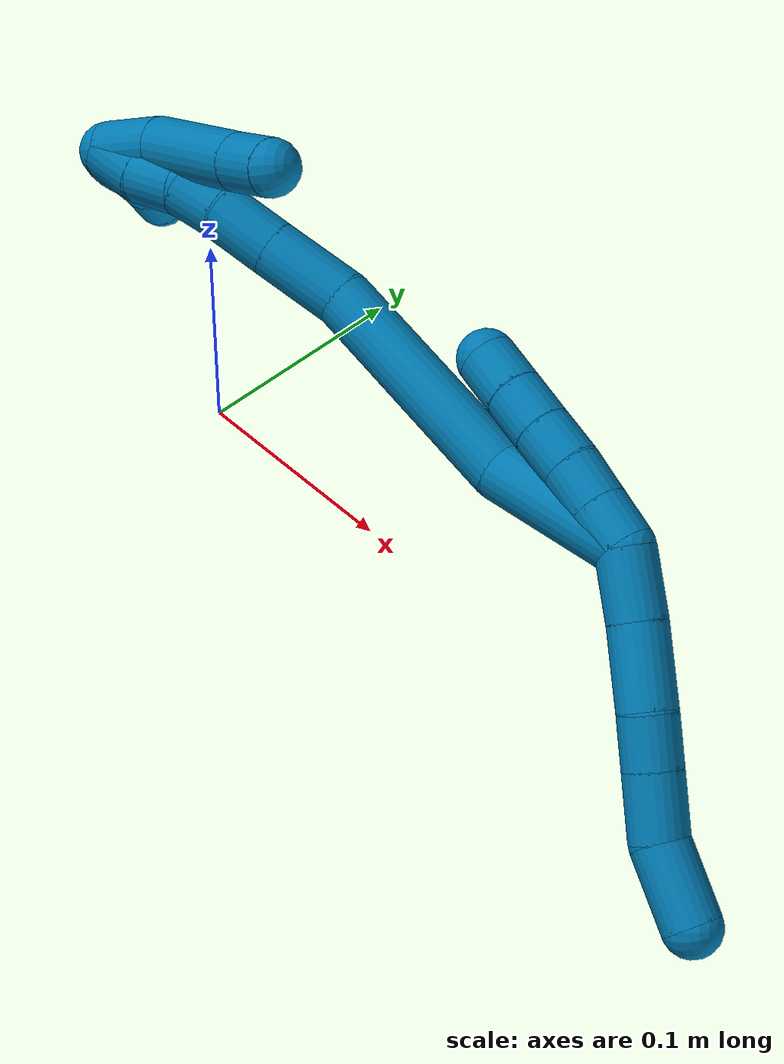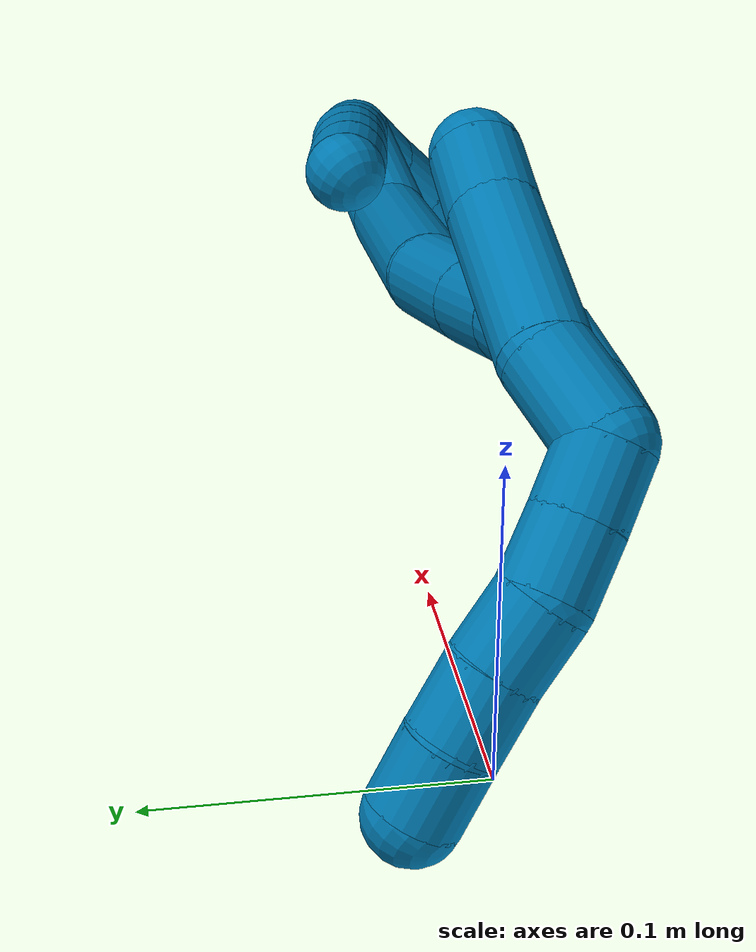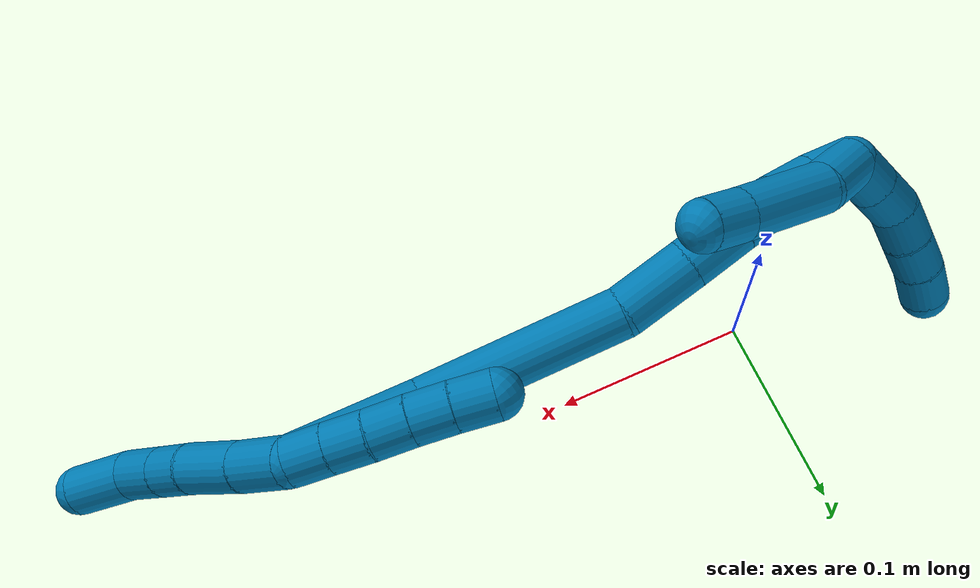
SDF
<sdf version="1.7">
 <world name="default">
  <model name="9">
   <static>0</static>
   <link name="9">
    <collision name="collision-cylinder-e_1_2_8">
     <pose>0.012332 -0.007903 -0.002269 1.85042 0.982718 1.23538</pose>
     <geometry><cylinder><radius>0.0125</radius><length>0.029643</length></cylinder></geometry>
     <surface>
      <friction><ode><mu>1.16</mu><mu2>1.16</mu2><slip1>0</slip1><slip2>0</slip2></ode></friction>
      <contact><ode><kp>1e+06</kp><kd>1</kd><max_vel>0</max_vel><min_depth>0.001</min_depth></ode></contact>
     </surface>
    </collision>
    <visual name="visual-cylinder-e_1_2_8">
     <pose>0.012332 -0.007903 -0.002269 1.85042 0.982718 1.23538</pose>
     <geometry><cylinder><radius>0.0125</radius><length>0.029643</length></cylinder></geometry>
     <material><ambient>0 0.490196 0.709804 1</ambient></material>
    </visual>
    <collision name="collision-cylinder-e_2_8_9">
     <pose>0.039616 -0.024712 -0.00653 1.79076 1.02285 1.22221</pose>
     <geometry><cylinder><radius>0.0125</radius><length>0.035035</length></cylinder></geometry>
     <surface>
      <friction><ode><mu>1.16</mu><mu2>1.16</mu2><slip1>0</slip1><slip2>0</slip2></ode></friction>
      <contact><ode><kp>1e+06</kp><kd>1</kd><max_vel>0</max_vel><min_depth>0.001</min_depth></ode></contact>
     </surface>
    </collision>
    <visual name="visual-cylinder-e_2_8_9">
     <pose>0.039616 -0.024712 -0.00653 1.79076 1.02285 1.22221</pose>
     <geometry><cylinder><radius>0.0125</radius><length>0.035035</length></cylinder></geometry>
     <material><ambient>0 0.490196 0.709804 1</ambient></material>
    </visual>
    <collision name="collision-cylinder-e_3_9_10">
     <pose>0.063507 -0.040174 -0.009065 1.65354 0.936272 1.00459</pose>
     <geometry><cylinder><radius>0.0125</radius><length>0.022197</length></cylinder></geometry>
     <surface>
      <friction><ode><mu>1.16</mu><mu2>1.16</mu2><slip1>0</slip1><slip2>0</slip2></ode></friction>
      <contact><ode><kp>1e+06</kp><kd>1</kd><max_vel>0</max_vel><min_depth>0.001</min_depth></ode></contact>
     </surface>
    </collision>
    <visual name="visual-cylinder-e_3_9_10">
     <pose>0.063507 -0.040174 -0.009065 1.65354 0.936272 1.00459</pose>
     <geometry><cylinder><radius>0.0125</radius><length>0.022197</length></cylinder></geometry>
     <material><ambient>0 0.490196 0.709804 1</ambient></material>
    </visual>
    <collision name="collision-cylinder-e_4_10_11">
     <pose>0.083855 -0.054958 -0.010325 1.65772 0.944269 1.01654</pose>
     <geometry><cylinder><radius>0.0125</radius><length>0.02817</length></cylinder></geometry>
     <surface>
      <friction><ode><mu>1.16</mu><mu2>1.16</mu2><slip1>0</slip1><slip2>0</slip2></ode></friction>
      <contact><ode><kp>1e+06</kp><kd>1</kd><max_vel>0</max_vel><min_depth>0.001</min_depth></ode></contact>
     </surface>
    </collision>
    <visual name="visual-cylinder-e_4_10_11">
     <pose>0.083855 -0.054958 -0.010325 1.65772 0.944269 1.01654</pose>
     <geometry><cylinder><radius>0.0125</radius><length>0.02817</length></cylinder></geometry>
     <material><ambient>0 0.490196 0.709804 1</ambient></material>
    </visual>
    <collision name="collision-cylinder-e_5_11_6">
     <pose>0.108621 -0.072604 -0.017235 2.15241 0.869805 1.42219</pose>
     <geometry><cylinder><radius>0.0125</radius><length>0.034955</length></cylinder></geometry>
     <surface>
      <friction><ode><mu>1.16</mu><mu2>1.16</mu2><slip1>0</slip1><slip2>0</slip2></ode></friction>
      <contact><ode><kp>1e+06</kp><kd>1</kd><max_vel>0</max_vel><min_depth>0.001</min_depth></ode></contact>
     </surface>
    </collision>
    <visual name="visual-cylinder-e_5_11_6">
     <pose>0.108621 -0.072604 -0.017235 2.15241 0.869805 1.42219</pose>
     <geometry><cylinder><radius>0.0125</radius><length>0.034955</length></cylinder></geometry>
     <material><ambient>0 0.490196 0.709804 1</ambient></material>
    </visual>
    <collision name="collision-cylinder-e_1_2_12">
     <pose>-0.007031 0.004008 0.005874 -0.598778 -0.779735 0.252315</pose>
     <geometry><cylinder><radius>0.0125</radius><length>0.02</length></cylinder></geometry>
     <surface>
      <friction><ode><mu>1.16</mu><mu2>1.16</mu2><slip1>0</slip1><slip2>0</slip2></ode></friction>
      <contact><ode><kp>1e+06</kp><kd>1</kd><max_vel>0</max_vel><min_depth>0.001</min_depth></ode></contact>
     </surface>
    </collision>
    <visual name="visual-cylinder-e_1_2_12">
     <pose>-0.007031 0.004008 0.005874 -0.598778 -0.779735 0.252315</pose>
     <geometry><cylinder><radius>0.0125</radius><length>0.02</length></cylinder></geometry>
     <material><ambient>0 0.490196 0.709804 1</ambient></material>
    </visual>
    <collision name="collision-cylinder-e_2_12_13">
     <pose>-0.021136 0.01197 0.017606 -0.593668 -0.785848 0.252207</pose>
     <geometry><cylinder><radius>0.0125</radius><length>0.02</length></cylinder></geometry>
     <surface>
      <friction><ode><mu>1.16</mu><mu2>1.16</mu2><slip1>0</slip1><slip2>0</slip2></ode></friction>
      <contact><ode><kp>1e+06</kp><kd>1</kd><max_vel>0</max_vel><min_depth>0.001</min_depth></ode></contact>
     </surface>
    </collision>
    <visual name="visual-cylinder-e_2_12_13">
     <pose>-0.021136 0.01197 0.017606 -0.593668 -0.785848 0.252207</pose>
     <geometry><cylinder><radius>0.0125</radius><length>0.02</length></cylinder></geometry>
     <material><ambient>0 0.490196 0.709804 1</ambient></material>
    </visual>
    <collision name="collision-cylinder-e_3_13_14">
     <pose>-0.034871 0.019584 0.029963 -0.513024 -0.728982 0.199484</pose>
     <geometry><cylinder><radius>0.0125</radius><length>0.02</length></cylinder></geometry>
     <surface>
      <friction><ode><mu>1.16</mu><mu2>1.16</mu2><slip1>0</slip1><slip2>0</slip2></ode></friction>
      <contact><ode><kp>1e+06</kp><kd>1</kd><max_vel>0</max_vel><min_depth>0.001</min_depth></ode></contact>
     </surface>
    </collision>
    <visual name="visual-cylinder-e_3_13_14">
     <pose>-0.034871 0.019584 0.029963 -0.513024 -0.728982 0.199484</pose>
     <geometry><cylinder><radius>0.0125</radius><length>0.02</length></cylinder></geometry>
     <material><ambient>0 0.490196 0.709804 1</ambient></material>
    </visual>
    <collision name="collision-cylinder-e_4_14_15">
     <pose>-0.048356 0.026559 0.042977 -0.470449 -0.751029 0.1884</pose>
     <geometry><cylinder><radius>0.0125</radius><length>0.02</length></cylinder></geometry>
     <surface>
      <friction><ode><mu>1.16</mu><mu2>1.16</mu2><slip1>0</slip1><slip2>0</slip2></ode></friction>
      <contact><ode><kp>1e+06</kp><kd>1</kd><max_vel>0</max_vel><min_depth>0.001</min_depth></ode></contact>
     </surface>
    </collision>
    <visual name="visual-cylinder-e_4_14_15">
     <pose>-0.048356 0.026559 0.042977 -0.470449 -0.751029 0.1884</pose>
     <geometry><cylinder><radius>0.0125</radius><length>0.02</length></cylinder></geometry>
     <material><ambient>0 0.490196 0.709804 1</ambient></material>
    </visual>
    <collision name="collision-cylinder-e_5_15_5">
     <pose>-0.062124 0.032742 0.056092 -0.410238 -0.767498 0.16761</pose>
     <geometry><cylinder><radius>0.0125</radius><length>0.02</length></cylinder></geometry>
     <surface>
      <friction><ode><mu>1.16</mu><mu2>1.16</mu2><slip1>0</slip1><slip2>0</slip2></ode></friction>
      <contact><ode><kp>1e+06</kp><kd>1</kd><max_vel>0</max_vel><min_depth>0.001</min_depth></ode></contact>
     </surface>
    </collision>
    <visual name="visual-cylinder-e_5_15_5">
     <pose>-0.062124 0.032742 0.056092 -0.410238 -0.767498 0.16761</pose>
     <geometry><cylinder><radius>0.0125</radius><length>0.02</length></cylinder></geometry>
     <material><ambient>0 0.490196 0.709804 1</ambient></material>
    </visual>
    <collision name="collision-cylinder-e_1_2_16">
     <pose>-0.015783 0.005208 0.029 -0.177686 -0.491787 0.044704</pose>
     <geometry><cylinder><radius>0.0125</radius><length>0.06685</length></cylinder></geometry>
     <surface>
      <friction><ode><mu>1.16</mu><mu2>1.16</mu2><slip1>0</slip1><slip2>0</slip2></ode></friction>
      <contact><ode><kp>1e+06</kp><kd>1</kd><max_vel>0</max_vel><min_depth>0.001</min_depth></ode></contact>
     </surface>
    </collision>
    <visual name="visual-cylinder-e_1_2_16">
     <pose>-0.015783 0.005208 0.029 -0.177686 -0.491787 0.044704</pose>
     <geometry><cylinder><radius>0.0125</radius><length>0.06685</length></cylinder></geometry>
     <material><ambient>0 0.490196 0.709804 1</ambient></material>
    </visual>
    <collision name="collision-cylinder-e_2_16_17">
     <pose>-0.062122 0.03067 0.093279 -0.521173 -0.644209 0.177508</pose>
     <geometry><cylinder><radius>0.0125</radius><length>0.101754</length></cylinder></geometry>
     <surface>
      <friction><ode><mu>1.16</mu><mu2>1.16</mu2><slip1>0</slip1><slip2>0</slip2></ode></friction>
      <contact><ode><kp>1e+06</kp><kd>1</kd><max_vel>0</max_vel><min_depth>0.001</min_depth></ode></contact>
     </surface>
    </collision>
    <visual name="visual-cylinder-e_2_16_17">
     <pose>-0.062122 0.03067 0.093279 -0.521173 -0.644209 0.177508</pose>
     <geometry><cylinder><radius>0.0125</radius><length>0.101754</length></cylinder></geometry>
     <material><ambient>0 0.490196 0.709804 1</ambient></material>
    </visual>
    <collision name="collision-cylinder-e_3_17_18">
     <pose>-0.100199 0.05952 0.143148 -0.532405 -0.418067 0.115557</pose>
     <geometry><cylinder><radius>0.0125</radius><length>0.037059</length></cylinder></geometry>
     <surface>
      <friction><ode><mu>1.16</mu><mu2>1.16</mu2><slip1>0</slip1><slip2>0</slip2></ode></friction>
      <contact><ode><kp>1e+06</kp><kd>1</kd><max_vel>0</max_vel><min_depth>0.001</min_depth></ode></contact>
     </surface>
    </collision>
    <visual name="visual-cylinder-e_3_17_18">
     <pose>-0.100199 0.05952 0.143148 -0.532405 -0.418067 0.115557</pose>
     <geometry><cylinder><radius>0.0125</radius><length>0.037059</length></cylinder></geometry>
     <material><ambient>0 0.490196 0.709804 1</ambient></material>
    </visual>
    <collision name="collision-cylinder-e_4_18_19">
     <pose>-0.113447 0.075123 0.168772 -0.565787 -0.41277 0.121571</pose>
     <geometry><cylinder><radius>0.0125</radius><length>0.02854</length></cylinder></geometry>
     <surface>
      <friction><ode><mu>1.16</mu><mu2>1.16</mu2><slip1>0</slip1><slip2>0</slip2></ode></friction>
      <contact><ode><kp>1e+06</kp><kd>1</kd><max_vel>0</max_vel><min_depth>0.001</min_depth></ode></contact>
     </surface>
    </collision>
    <visual name="visual-cylinder-e_4_18_19">
     <pose>-0.113447 0.075123 0.168772 -0.565787 -0.41277 0.121571</pose>
     <geometry><cylinder><radius>0.0125</radius><length>0.02854</length></cylinder></geometry>
     <material><ambient>0 0.490196 0.709804 1</ambient></material>
    </visual>
    <collision name="collision-cylinder-e_5_19_20">
     <pose>-0.123149 0.0861 0.188293 -0.437504 -0.401472 0.090408</pose>
     <geometry><cylinder><radius>0.0125</radius><length>0.020357</length></cylinder></geometry>
     <surface>
      <friction><ode><mu>1.16</mu><mu2>1.16</mu2><slip1>0</slip1><slip2>0</slip2></ode></friction>
      <contact><ode><kp>1e+06</kp><kd>1</kd><max_vel>0</max_vel><min_depth>0.001</min_depth></ode></contact>
     </surface>
    </collision>
    <visual name="visual-cylinder-e_5_19_20">
     <pose>-0.123149 0.0861 0.188293 -0.437504 -0.401472 0.090408</pose>
     <geometry><cylinder><radius>0.0125</radius><length>0.020357</length></cylinder></geometry>
     <material><ambient>0 0.490196 0.709804 1</ambient></material>
    </visual>
    <collision name="collision-cylinder-e_6_20_21">
     <pose>-0.130826 0.091097 0.207787 -0.093035 -0.322934 0.015165</pose>
     <geometry><cylinder><radius>0.0125</radius><length>0.023315</length></cylinder></geometry>
     <surface>
      <friction><ode><mu>1.16</mu><mu2>1.16</mu2><slip1>0</slip1><slip2>0</slip2></ode></friction>
      <contact><ode><kp>1e+06</kp><kd>1</kd><max_vel>0</max_vel><min_depth>0.001</min_depth></ode></contact>
     </surface>
    </collision>
    <visual name="visual-cylinder-e_6_20_21">
     <pose>-0.130826 0.091097 0.207787 -0.093035 -0.322934 0.015165</pose>
     <geometry><cylinder><radius>0.0125</radius><length>0.023315</length></cylinder></geometry>
     <material><ambient>0 0.490196 0.709804 1</ambient></material>
    </visual>
    <collision name="collision-cylinder-e_7_21_1">
     <pose>-0.140166 0.094457 0.22802 -0.247735 -0.535104 0.068233</pose>
     <geometry><cylinder><radius>0.0125</radius><length>0.022125</length></cylinder></geometry>
     <surface>
      <friction><ode><mu>1.16</mu><mu2>1.16</mu2><slip1>0</slip1><slip2>0</slip2></ode></friction>
      <contact><ode><kp>1e+06</kp><kd>1</kd><max_vel>0</max_vel><min_depth>0.001</min_depth></ode></contact>
     </surface>
    </collision>
    <visual name="visual-cylinder-e_7_21_1">
     <pose>-0.140166 0.094457 0.22802 -0.247735 -0.535104 0.068233</pose>
     <geometry><cylinder><radius>0.0125</radius><length>0.022125</length></cylinder></geometry>
     <material><ambient>0 0.490196 0.709804 1</ambient></material>
    </visual>
    <collision name="collision-cylinder-e_1_1_22">
     <pose>-0.150527 0.089459 0.242142 0.981995 -0.491496 -0.266619</pose>
     <geometry><cylinder><radius>0.0125</radius><length>0.02</length></cylinder></geometry>
     <surface>
      <friction><ode><mu>1.16</mu><mu2>1.16</mu2><slip1>0</slip1><slip2>0</slip2></ode></friction>
      <contact><ode><kp>1e+06</kp><kd>1</kd><max_vel>0</max_vel><min_depth>0.001</min_depth></ode></contact>
     </surface>
    </collision>
    <visual name="visual-cylinder-e_1_1_22">
     <pose>-0.150527 0.089459 0.242142 0.981995 -0.491496 -0.266619</pose>
     <geometry><cylinder><radius>0.0125</radius><length>0.02</length></cylinder></geometry>
     <material><ambient>0 0.490196 0.709804 1</ambient></material>
    </visual>
    <collision name="collision-cylinder-e_2_22_23">
     <pose>-0.160246 0.074854 0.251739 0.99703 -0.523543 -0.289655</pose>
     <geometry><cylinder><radius>0.0125</radius><length>0.02</length></cylinder></geometry>
     <surface>
      <friction><ode><mu>1.16</mu><mu2>1.16</mu2><slip1>0</slip1><slip2>0</slip2></ode></friction>
      <contact><ode><kp>1e+06</kp><kd>1</kd><max_vel>0</max_vel><min_depth>0.001</min_depth></ode></contact>
     </surface>
    </collision>
    <visual name="visual-cylinder-e_2_22_23">
     <pose>-0.160246 0.074854 0.251739 0.99703 -0.523543 -0.289655</pose>
     <geometry><cylinder><radius>0.0125</radius><length>0.02</length></cylinder></geometry>
     <material><ambient>0 0.490196 0.709804 1</ambient></material>
    </visual>
    <collision name="collision-cylinder-e_3_23_24">
     <pose>-0.169692 0.058884 0.258587 1.32875 -0.460808 -0.36335</pose>
     <geometry><cylinder><radius>0.0125</radius><length>0.02</length></cylinder></geometry>
     <surface>
      <friction><ode><mu>1.16</mu><mu2>1.16</mu2><slip1>0</slip1><slip2>0</slip2></ode></friction>
      <contact><ode><kp>1e+06</kp><kd>1</kd><max_vel>0</max_vel><min_depth>0.001</min_depth></ode></contact>
     </surface>
    </collision>
    <visual name="visual-cylinder-e_3_23_24">
     <pose>-0.169692 0.058884 0.258587 1.32875 -0.460808 -0.36335</pose>
     <geometry><cylinder><radius>0.0125</radius><length>0.02</length></cylinder></geometry>
     <material><ambient>0 0.490196 0.709804 1</ambient></material>
    </visual>
    <collision name="collision-cylinder-e_4_24_25">
     <pose>-0.178078 0.041421 0.263493 1.26592 -0.404911 -0.298946</pose>
     <geometry><cylinder><radius>0.0125</radius><length>0.02</length></cylinder></geometry>
     <surface>
      <friction><ode><mu>1.16</mu><mu2>1.16</mu2><slip1>0</slip1><slip2>0</slip2></ode></friction>
      <contact><ode><kp>1e+06</kp><kd>1</kd><max_vel>0</max_vel><min_depth>0.001</min_depth></ode></contact>
     </surface>
    </collision>
    <visual name="visual-cylinder-e_4_24_25">
     <pose>-0.178078 0.041421 0.263493 1.26592 -0.404911 -0.298946</pose>
     <geometry><cylinder><radius>0.0125</radius><length>0.02</length></cylinder></geometry>
     <material><ambient>0 0.490196 0.709804 1</ambient></material>
    </visual>
    <collision name="collision-cylinder-e_5_25_4">
     <pose>-0.184828 0.023352 0.268616 1.32187 -0.28486 -0.222101</pose>
     <geometry><cylinder><radius>0.0125</radius><length>0.02</length></cylinder></geometry>
     <surface>
      <friction><ode><mu>1.16</mu><mu2>1.16</mu2><slip1>0</slip1><slip2>0</slip2></ode></friction>
      <contact><ode><kp>1e+06</kp><kd>1</kd><max_vel>0</max_vel><min_depth>0.001</min_depth></ode></contact>
     </surface>
    </collision>
    <visual name="visual-cylinder-e_5_25_4">
     <pose>-0.184828 0.023352 0.268616 1.32187 -0.28486 -0.222101</pose>
     <geometry><cylinder><radius>0.0125</radius><length>0.02</length></cylinder></geometry>
     <material><ambient>0 0.490196 0.709804 1</ambient></material>
    </visual>
    <collision name="collision-cylinder-e_1_1_26">
     <pose>-0.145 0.097609 0.223208 -3.08334 0.057329 -1.55479</pose>
     <geometry><cylinder><radius>0.0125</radius><length>0.028169</length></cylinder></geometry>
     <surface>
      <friction><ode><mu>1.16</mu><mu2>1.16</mu2><slip1>0</slip1><slip2>0</slip2></ode></friction>
      <contact><ode><kp>1e+06</kp><kd>1</kd><max_vel>0</max_vel><min_depth>0.001</min_depth></ode></contact>
     </surface>
    </collision>
    <visual name="visual-cylinder-e_1_1_26">
     <pose>-0.145 0.097609 0.223208 -3.08334 0.057329 -1.55479</pose>
     <geometry><cylinder><radius>0.0125</radius><length>0.028169</length></cylinder></geometry>
     <material><ambient>0 0.490196 0.709804 1</ambient></material>
    </visual>
    <collision name="collision-cylinder-e_2_26_27">
     <pose>-0.135324 0.100868 0.185797 -3.03757 0.360887 -2.58564</pose>
     <geometry><cylinder><radius>0.0125</radius><length>0.050237</length></cylinder></geometry>
     <surface>
      <friction><ode><mu>1.16</mu><mu2>1.16</mu2><slip1>0</slip1><slip2>0</slip2></ode></friction>
      <contact><ode><kp>1e+06</kp><kd>1</kd><max_vel>0</max_vel><min_depth>0.001</min_depth></ode></contact>
     </surface>
    </collision>
    <visual name="visual-cylinder-e_2_26_27">
     <pose>-0.135324 0.100868 0.185797 -3.03757 0.360887 -2.58564</pose>
     <geometry><cylinder><radius>0.0125</radius><length>0.050237</length></cylinder></geometry>
     <material><ambient>0 0.490196 0.709804 1</ambient></material>
    </visual>
    <collision name="collision-cylinder-e_3_27_3">
     <pose>-0.122696 0.104826 0.152416 -2.99109 0.355532 -2.34694</pose>
     <geometry><cylinder><radius>0.0125</radius><length>0.021594</length></cylinder></geometry>
     <surface>
      <friction><ode><mu>1.16</mu><mu2>1.16</mu2><slip1>0</slip1><slip2>0</slip2></ode></friction>
      <contact><ode><kp>1e+06</kp><kd>1</kd><max_vel>0</max_vel><min_depth>0.001</min_depth></ode></contact>
     </surface>
    </collision>
    <visual name="visual-cylinder-e_3_27_3">
     <pose>-0.122696 0.104826 0.152416 -2.99109 0.355532 -2.34694</pose>
     <geometry><cylinder><radius>0.0125</radius><length>0.021594</length></cylinder></geometry>
     <material><ambient>0 0.490196 0.709804 1</ambient></material>
    </visual>
    <collision name="collision-sphere-3">
     <pose>-0.118938 0.106343 0.142409 0 -0 0</pose>
     <geometry><sphere><radius>0.0125</radius></sphere></geometry>
     <surface>
      <friction><ode><mu>1.16</mu><mu2>1.16</mu2><slip1>0</slip1><slip2>0</slip2></ode></friction>
      <contact><ode><kp>1e+06</kp><kd>1</kd><max_vel>0</max_vel><min_depth>0.001</min_depth></ode></contact>
     </surface>
    </collision>
    <visual name="visual-sphere-3">
     <pose>-0.118938 0.106343 0.142409 0 -0 0</pose>
     <geometry><sphere><radius>0.0125</radius></sphere></geometry>
     <material><ambient>0 0.490196 0.709804 1</ambient></material>
    </visual>
    <collision name="collision-sphere-27">
     <pose>-0.126454 0.103308 0.162423 0 -0 0</pose>
     <geometry><sphere><radius>0.0125</radius></sphere></geometry>
     <surface>
      <friction><ode><mu>1.16</mu><mu2>1.16</mu2><slip1>0</slip1><slip2>0</slip2></ode></friction>
      <contact><ode><kp>1e+06</kp><kd>1</kd><max_vel>0</max_vel><min_depth>0.001</min_depth></ode></contact>
     </surface>
    </collision>
    <visual name="visual-sphere-27">
     <pose>-0.126454 0.103308 0.162423 0 -0 0</pose>
     <geometry><sphere><radius>0.0125</radius></sphere></geometry>
     <material><ambient>0 0.490196 0.709804 1</ambient></material>
    </visual>
    <collision name="collision-sphere-26">
     <pose>-0.144193 0.098428 0.209171 0 -0 0</pose>
     <geometry><sphere><radius>0.0125</radius></sphere></geometry>
     <surface>
      <friction><ode><mu>1.16</mu><mu2>1.16</mu2><slip1>0</slip1><slip2>0</slip2></ode></friction>
      <contact><ode><kp>1e+06</kp><kd>1</kd><max_vel>0</max_vel><min_depth>0.001</min_depth></ode></contact>
     </surface>
    </collision>
    <visual name="visual-sphere-26">
     <pose>-0.144193 0.098428 0.209171 0 -0 0</pose>
     <geometry><sphere><radius>0.0125</radius></sphere></geometry>
     <material><ambient>0 0.490196 0.709804 1</ambient></material>
    </visual>
    <collision name="collision-sphere-4">
     <pose>-0.187638 0.014051 0.270981 0 -0 0</pose>
     <geometry><sphere><radius>0.0125</radius></sphere></geometry>
     <surface>
      <friction><ode><mu>1.16</mu><mu2>1.16</mu2><slip1>0</slip1><slip2>0</slip2></ode></friction>
      <contact><ode><kp>1e+06</kp><kd>1</kd><max_vel>0</max_vel><min_depth>0.001</min_depth></ode></contact>
     </surface>
    </collision>
    <visual name="visual-sphere-4">
     <pose>-0.187638 0.014051 0.270981 0 -0 0</pose>
     <geometry><sphere><radius>0.0125</radius></sphere></geometry>
     <material><ambient>0 0.490196 0.709804 1</ambient></material>
    </visual>
    <collision name="collision-sphere-25">
     <pose>-0.182018 0.032653 0.266252 0 -0 0</pose>
     <geometry><sphere><radius>0.0125</radius></sphere></geometry>
     <surface>
      <friction><ode><mu>1.16</mu><mu2>1.16</mu2><slip1>0</slip1><slip2>0</slip2></ode></friction>
      <contact><ode><kp>1e+06</kp><kd>1</kd><max_vel>0</max_vel><min_depth>0.001</min_depth></ode></contact>
     </surface>
    </collision>
    <visual name="visual-sphere-25">
     <pose>-0.182018 0.032653 0.266252 0 -0 0</pose>
     <geometry><sphere><radius>0.0125</radius></sphere></geometry>
     <material><ambient>0 0.490196 0.709804 1</ambient></material>
    </visual>
    <collision name="collision-sphere-24">
     <pose>-0.174139 0.050188 0.260734 0 -0 0</pose>
     <geometry><sphere><radius>0.0125</radius></sphere></geometry>
     <surface>
      <friction><ode><mu>1.16</mu><mu2>1.16</mu2><slip1>0</slip1><slip2>0</slip2></ode></friction>
      <contact><ode><kp>1e+06</kp><kd>1</kd><max_vel>0</max_vel><min_depth>0.001</min_depth></ode></contact>
     </surface>
    </collision>
    <visual name="visual-sphere-24">
     <pose>-0.174139 0.050188 0.260734 0 -0 0</pose>
     <geometry><sphere><radius>0.0125</radius></sphere></geometry>
     <material><ambient>0 0.490196 0.709804 1</ambient></material>
    </visual>
    <collision name="collision-sphere-23">
     <pose>-0.165245 0.06758 0.25644 0 -0 0</pose>
     <geometry><sphere><radius>0.0125</radius></sphere></geometry>
     <surface>
      <friction><ode><mu>1.16</mu><mu2>1.16</mu2><slip1>0</slip1><slip2>0</slip2></ode></friction>
      <contact><ode><kp>1e+06</kp><kd>1</kd><max_vel>0</max_vel><min_depth>0.001</min_depth></ode></contact>
     </surface>
    </collision>
    <visual name="visual-sphere-23">
     <pose>-0.165245 0.06758 0.25644 0 -0 0</pose>
     <geometry><sphere><radius>0.0125</radius></sphere></geometry>
     <material><ambient>0 0.490196 0.709804 1</ambient></material>
    </visual>
    <collision name="collision-sphere-22">
     <pose>-0.155246 0.082127 0.247038 0 -0 0</pose>
     <geometry><sphere><radius>0.0125</radius></sphere></geometry>
     <surface>
      <friction><ode><mu>1.16</mu><mu2>1.16</mu2><slip1>0</slip1><slip2>0</slip2></ode></friction>
      <contact><ode><kp>1e+06</kp><kd>1</kd><max_vel>0</max_vel><min_depth>0.001</min_depth></ode></contact>
     </surface>
    </collision>
    <visual name="visual-sphere-22">
     <pose>-0.155246 0.082127 0.247038 0 -0 0</pose>
     <geometry><sphere><radius>0.0125</radius></sphere></geometry>
     <material><ambient>0 0.490196 0.709804 1</ambient></material>
    </visual>
    <collision name="collision-sphere-1">
     <pose>-0.145807 0.096791 0.237246 0 -0 0</pose>
     <geometry><sphere><radius>0.0125</radius></sphere></geometry>
     <surface>
      <friction><ode><mu>1.16</mu><mu2>1.16</mu2><slip1>0</slip1><slip2>0</slip2></ode></friction>
      <contact><ode><kp>1e+06</kp><kd>1</kd><max_vel>0</max_vel><min_depth>0.001</min_depth></ode></contact>
     </surface>
    </collision>
    <visual name="visual-sphere-1">
     <pose>-0.145807 0.096791 0.237246 0 -0 0</pose>
     <geometry><sphere><radius>0.0125</radius></sphere></geometry>
     <material><ambient>0 0.490196 0.709804 1</ambient></material>
    </visual>
    <collision name="collision-sphere-21">
     <pose>-0.134525 0.092124 0.218794 0 -0 0</pose>
     <geometry><sphere><radius>0.0125</radius></sphere></geometry>
     <surface>
      <friction><ode><mu>1.16</mu><mu2>1.16</mu2><slip1>0</slip1><slip2>0</slip2></ode></friction>
      <contact><ode><kp>1e+06</kp><kd>1</kd><max_vel>0</max_vel><min_depth>0.001</min_depth></ode></contact>
     </surface>
    </collision>
    <visual name="visual-sphere-21">
     <pose>-0.134525 0.092124 0.218794 0 -0 0</pose>
     <geometry><sphere><radius>0.0125</radius></sphere></geometry>
     <material><ambient>0 0.490196 0.709804 1</ambient></material>
    </visual>
    <collision name="collision-sphere-6">
     <pose>0.121978 -0.082023 -0.023428 0 -0 0</pose>
     <geometry><sphere><radius>0.0125</radius></sphere></geometry>
     <surface>
      <friction><ode><mu>1.16</mu><mu2>1.16</mu2><slip1>0</slip1><slip2>0</slip2></ode></friction>
      <contact><ode><kp>1e+06</kp><kd>1</kd><max_vel>0</max_vel><min_depth>0.001</min_depth></ode></contact>
     </surface>
    </collision>
    <visual name="visual-sphere-6">
     <pose>0.121978 -0.082023 -0.023428 0 -0 0</pose>
     <geometry><sphere><radius>0.0125</radius></sphere></geometry>
     <material><ambient>0 0.490196 0.709804 1</ambient></material>
    </visual>
    <collision name="collision-sphere-11">
     <pose>0.095265 -0.063185 -0.011042 0 -0 0</pose>
     <geometry><sphere><radius>0.0125</radius></sphere></geometry>
     <surface>
      <friction><ode><mu>1.16</mu><mu2>1.16</mu2><slip1>0</slip1><slip2>0</slip2></ode></friction>
      <contact><ode><kp>1e+06</kp><kd>1</kd><max_vel>0</max_vel><min_depth>0.001</min_depth></ode></contact>
     </surface>
    </collision>
    <visual name="visual-sphere-11">
     <pose>0.095265 -0.063185 -0.011042 0 -0 0</pose>
     <geometry><sphere><radius>0.0125</radius></sphere></geometry>
     <material><ambient>0 0.490196 0.709804 1</ambient></material>
    </visual>
    <collision name="collision-sphere-10">
     <pose>0.072445 -0.046731 -0.009608 0 -0 0</pose>
     <geometry><sphere><radius>0.0125</radius></sphere></geometry>
     <surface>
      <friction><ode><mu>1.16</mu><mu2>1.16</mu2><slip1>0</slip1><slip2>0</slip2></ode></friction>
      <contact><ode><kp>1e+06</kp><kd>1</kd><max_vel>0</max_vel><min_depth>0.001</min_depth></ode></contact>
     </surface>
    </collision>
    <visual name="visual-sphere-10">
     <pose>0.072445 -0.046731 -0.009608 0 -0 0</pose>
     <geometry><sphere><radius>0.0125</radius></sphere></geometry>
     <material><ambient>0 0.490196 0.709804 1</ambient></material>
    </visual>
    <collision name="collision-sphere-9">
     <pose>0.054569 -0.033617 -0.008521 0 -0 0</pose>
     <geometry><sphere><radius>0.0125</radius></sphere></geometry>
     <surface>
      <friction><ode><mu>1.16</mu><mu2>1.16</mu2><slip1>0</slip1><slip2>0</slip2></ode></friction>
      <contact><ode><kp>1e+06</kp><kd>1</kd><max_vel>0</max_vel><min_depth>0.001</min_depth></ode></contact>
     </surface>
    </collision>
    <visual name="visual-sphere-9">
     <pose>0.054569 -0.033617 -0.008521 0 -0 0</pose>
     <geometry><sphere><radius>0.0125</radius></sphere></geometry>
     <material><ambient>0 0.490196 0.709804 1</ambient></material>
    </visual>
    <collision name="collision-sphere-2">
     <geometry><sphere><radius>0.0125</radius></sphere></geometry>
     <surface>
      <friction><ode><mu>1.16</mu><mu2>1.16</mu2><slip1>0</slip1><slip2>0</slip2></ode></friction>
      <contact><ode><kp>1e+06</kp><kd>1</kd><max_vel>0</max_vel><min_depth>0.001</min_depth></ode></contact>
     </surface>
    </collision>
    <visual name="visual-sphere-2">
     <geometry><sphere><radius>0.0125</radius></sphere></geometry>
     <material><ambient>0 0.490196 0.709804 1</ambient></material>
    </visual>
    <collision name="collision-sphere-19">
     <pose>-0.119171 0.08213 0.179807 0 -0 0</pose>
     <geometry><sphere><radius>0.0125</radius></sphere></geometry>
     <surface>
      <friction><ode><mu>1.16</mu><mu2>1.16</mu2><slip1>0</slip1><slip2>0</slip2></ode></friction>
      <contact><ode><kp>1e+06</kp><kd>1</kd><max_vel>0</max_vel><min_depth>0.001</min_depth></ode></contact>
     </surface>
    </collision>
    <visual name="visual-sphere-19">
     <pose>-0.119171 0.08213 0.179807 0 -0 0</pose>
     <geometry><sphere><radius>0.0125</radius></sphere></geometry>
     <material><ambient>0 0.490196 0.709804 1</ambient></material>
    </visual>
    <collision name="collision-sphere-8">
     <pose>0.024664 -0.015806 -0.004539 0 -0 0</pose>
     <geometry><sphere><radius>0.0125</radius></sphere></geometry>
     <surface>
      <friction><ode><mu>1.16</mu><mu2>1.16</mu2><slip1>0</slip1><slip2>0</slip2></ode></friction>
      <contact><ode><kp>1e+06</kp><kd>1</kd><max_vel>0</max_vel><min_depth>0.001</min_depth></ode></contact>
     </surface>
    </collision>
    <visual name="visual-sphere-8">
     <pose>0.024664 -0.015806 -0.004539 0 -0 0</pose>
     <geometry><sphere><radius>0.0125</radius></sphere></geometry>
     <material><ambient>0 0.490196 0.709804 1</ambient></material>
    </visual>
    <collision name="collision-sphere-12">
     <pose>-0.014062 0.008016 0.011748 0 -0 0</pose>
     <geometry><sphere><radius>0.0125</radius></sphere></geometry>
     <surface>
      <friction><ode><mu>1.16</mu><mu2>1.16</mu2><slip1>0</slip1><slip2>0</slip2></ode></friction>
      <contact><ode><kp>1e+06</kp><kd>1</kd><max_vel>0</max_vel><min_depth>0.001</min_depth></ode></contact>
     </surface>
    </collision>
    <visual name="visual-sphere-12">
     <pose>-0.014062 0.008016 0.011748 0 -0 0</pose>
     <geometry><sphere><radius>0.0125</radius></sphere></geometry>
     <material><ambient>0 0.490196 0.709804 1</ambient></material>
    </visual>
    <collision name="collision-sphere-13">
     <pose>-0.02821 0.015924 0.023465 0 -0 0</pose>
     <geometry><sphere><radius>0.0125</radius></sphere></geometry>
     <surface>
      <friction><ode><mu>1.16</mu><mu2>1.16</mu2><slip1>0</slip1><slip2>0</slip2></ode></friction>
      <contact><ode><kp>1e+06</kp><kd>1</kd><max_vel>0</max_vel><min_depth>0.001</min_depth></ode></contact>
     </surface>
    </collision>
    <visual name="visual-sphere-13">
     <pose>-0.02821 0.015924 0.023465 0 -0 0</pose>
     <geometry><sphere><radius>0.0125</radius></sphere></geometry>
     <material><ambient>0 0.490196 0.709804 1</ambient></material>
    </visual>
    <collision name="collision-sphere-14">
     <pose>-0.041533 0.023245 0.036461 0 -0 0</pose>
     <geometry><sphere><radius>0.0125</radius></sphere></geometry>
     <surface>
      <friction><ode><mu>1.16</mu><mu2>1.16</mu2><slip1>0</slip1><slip2>0</slip2></ode></friction>
      <contact><ode><kp>1e+06</kp><kd>1</kd><max_vel>0</max_vel><min_depth>0.001</min_depth></ode></contact>
     </surface>
    </collision>
    <visual name="visual-sphere-14">
     <pose>-0.041533 0.023245 0.036461 0 -0 0</pose>
     <geometry><sphere><radius>0.0125</radius></sphere></geometry>
     <material><ambient>0 0.490196 0.709804 1</ambient></material>
    </visual>
    <collision name="collision-sphere-15">
     <pose>-0.05518 0.029872 0.049493 0 -0 0</pose>
     <geometry><sphere><radius>0.0125</radius></sphere></geometry>
     <surface>
      <friction><ode><mu>1.16</mu><mu2>1.16</mu2><slip1>0</slip1><slip2>0</slip2></ode></friction>
      <contact><ode><kp>1e+06</kp><kd>1</kd><max_vel>0</max_vel><min_depth>0.001</min_depth></ode></contact>
     </surface>
    </collision>
    <visual name="visual-sphere-15">
     <pose>-0.05518 0.029872 0.049493 0 -0 0</pose>
     <geometry><sphere><radius>0.0125</radius></sphere></geometry>
     <material><ambient>0 0.490196 0.709804 1</ambient></material>
    </visual>
    <collision name="collision-sphere-5">
     <pose>-0.069067 0.035612 0.062692 0 -0 0</pose>
     <geometry><sphere><radius>0.0125</radius></sphere></geometry>
     <surface>
      <friction><ode><mu>1.16</mu><mu2>1.16</mu2><slip1>0</slip1><slip2>0</slip2></ode></friction>
      <contact><ode><kp>1e+06</kp><kd>1</kd><max_vel>0</max_vel><min_depth>0.001</min_depth></ode></contact>
     </surface>
    </collision>
    <visual name="visual-sphere-5">
     <pose>-0.069067 0.035612 0.062692 0 -0 0</pose>
     <geometry><sphere><radius>0.0125</radius></sphere></geometry>
     <material><ambient>0 0.490196 0.709804 1</ambient></material>
    </visual>
    <collision name="collision-sphere-16">
     <pose>-0.031567 0.010416 0.058 0 -0 0</pose>
     <geometry><sphere><radius>0.0125</radius></sphere></geometry>
     <surface>
      <friction><ode><mu>1.16</mu><mu2>1.16</mu2><slip1>0</slip1><slip2>0</slip2></ode></friction>
      <contact><ode><kp>1e+06</kp><kd>1</kd><max_vel>0</max_vel><min_depth>0.001</min_depth></ode></contact>
     </surface>
    </collision>
    <visual name="visual-sphere-16">
     <pose>-0.031567 0.010416 0.058 0 -0 0</pose>
     <geometry><sphere><radius>0.0125</radius></sphere></geometry>
     <material><ambient>0 0.490196 0.709804 1</ambient></material>
    </visual>
    <collision name="collision-sphere-17">
     <pose>-0.092677 0.050924 0.128558 0 -0 0</pose>
     <geometry><sphere><radius>0.0125</radius></sphere></geometry>
     <surface>
      <friction><ode><mu>1.16</mu><mu2>1.16</mu2><slip1>0</slip1><slip2>0</slip2></ode></friction>
      <contact><ode><kp>1e+06</kp><kd>1</kd><max_vel>0</max_vel><min_depth>0.001</min_depth></ode></contact>
     </surface>
    </collision>
    <visual name="visual-sphere-17">
     <pose>-0.092677 0.050924 0.128558 0 -0 0</pose>
     <geometry><sphere><radius>0.0125</radius></sphere></geometry>
     <material><ambient>0 0.490196 0.709804 1</ambient></material>
    </visual>
    <collision name="collision-sphere-18">
     <pose>-0.107722 0.068116 0.157737 0 -0 0</pose>
     <geometry><sphere><radius>0.0125</radius></sphere></geometry>
     <surface>
      <friction><ode><mu>1.16</mu><mu2>1.16</mu2><slip1>0</slip1><slip2>0</slip2></ode></friction>
      <contact><ode><kp>1e+06</kp><kd>1</kd><max_vel>0</max_vel><min_depth>0.001</min_depth></ode></contact>
     </surface>
    </collision>
    <visual name="visual-sphere-18">
     <pose>-0.107722 0.068116 0.157737 0 -0 0</pose>
     <geometry><sphere><radius>0.0125</radius></sphere></geometry>
     <material><ambient>0 0.490196 0.709804 1</ambient></material>
    </visual>
    <collision name="collision-sphere-20">
     <pose>-0.127126 0.09007 0.19678 0 -0 0</pose>
     <geometry><sphere><radius>0.0125</radius></sphere></geometry>
     <surface>
      <friction><ode><mu>1.16</mu><mu2>1.16</mu2><slip1>0</slip1><slip2>0</slip2></ode></friction>
      <contact><ode><kp>1e+06</kp><kd>1</kd><max_vel>0</max_vel><min_depth>0.001</min_depth></ode></contact>
     </surface>
    </collision>
    <visual name="visual-sphere-20">
     <pose>-0.127126 0.09007 0.19678 0 -0 0</pose>
     <geometry><sphere><radius>0.0125</radius></sphere></geometry>
     <material><ambient>0 0.490196 0.709804 1</ambient></material>
    </visual>
    <inertial>
     <pose>-0.063378 0.033926 0.108718 0 -0 0</pose>
     <mass>0.75</mass>
     <inertia>
      <ixx>0.000118</ixx>
      <ixy>0</ixy>
      <ixz>0</ixz>
      <iyy>0.000169</iyy>
      <iyz>0</iyz>
      <izz>4.4e-05</izz>
     </inertia>
    </inertial>
   </link>
   <pose>0.243577 0.002281 0.103244 1.96679 0.211989 -1.01031</pose>
  </model>
 </world>
</sdf>
